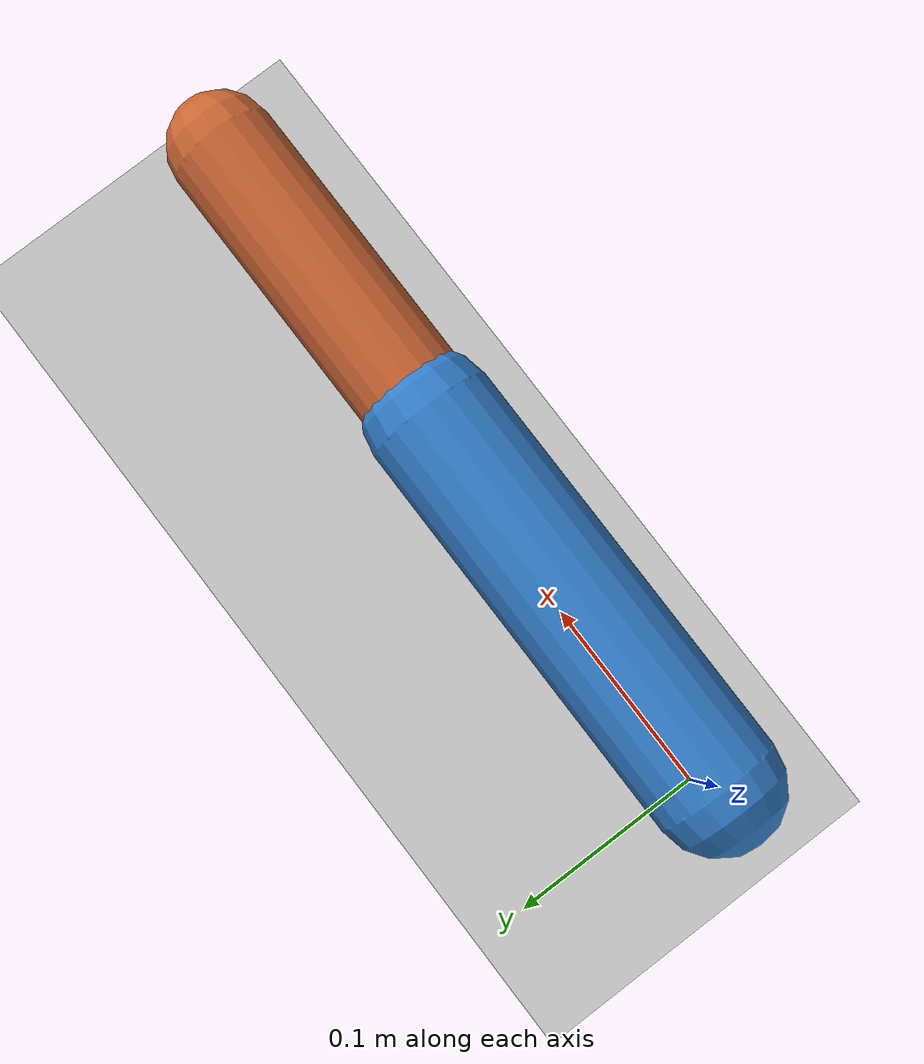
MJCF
<mujoco model="minimal">
  <option timestep="0.002" gravity="0 0 -9.81"/>
  <worldbody>
    <geom name="floor" type="plane" size="1 1 0.1" rgba="0.8 0.8 0.8 1"/>
    <body name="base" pos="0 0 0.1">
      <joint name="joint1" type="hinge" axis="0 0 1" range="-1.57 1.57" damping="0.1"/>
      <geom type="capsule" fromto="0 0 0 0.2 0 0" size="0.03" rgba="0.2 0.5 0.8 1"/>
      <body name="link2" pos="0.2 0 0">
        <joint name="joint2" type="hinge" axis="0 0 1" range="-1.0 1.0" damping="0.1"/>
        <geom type="capsule" fromto="0 0 0 0.15 0 0" size="0.025" rgba="0.8 0.4 0.2 1"/>
      </body>
    </body>
  </worldbody>
  <actuator>
    <motor joint="joint1" ctrlrange="-1 1"/>
    <motor joint="joint2" ctrlrange="-1 1"/>
  </actuator>
</mujoco>
